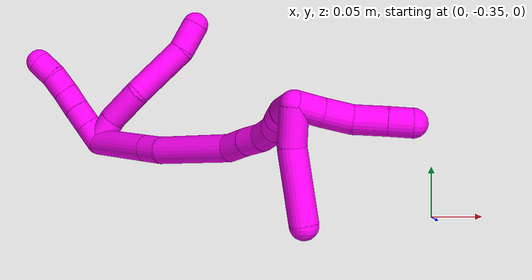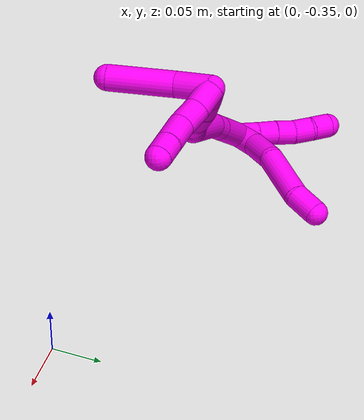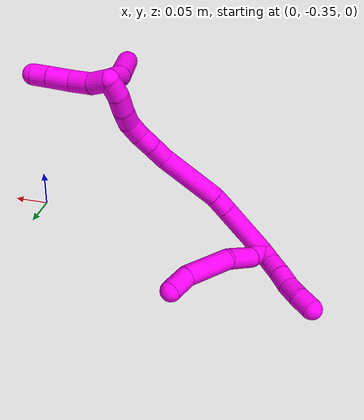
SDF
<sdf version="1.7">
 <world name="default">
  <model name="10">
   <static>0</static>
   <link name="10">
    <collision name="collision-cylinder-e_1_2_8">
     <pose>-0.002279 -0.00567 -0.01126 2.67509 -0.178845 -0.721756</pose>
     <geometry><cylinder><radius>0.0125</radius><length>0.025624</length></cylinder></geometry>
     <surface>
      <friction><ode><mu>1.16</mu><mu2>1.16</mu2><slip1>0</slip1><slip2>0</slip2></ode></friction>
      <contact><ode><kp>1e+06</kp><kd>1</kd><max_vel>0</max_vel><min_depth>0.001</min_depth></ode></contact>
     </surface>
    </collision>
    <visual name="visual-cylinder-e_1_2_8">
     <pose>-0.002279 -0.00567 -0.01126 2.67509 -0.178845 -0.721756</pose>
     <geometry><cylinder><radius>0.0125</radius><length>0.025624</length></cylinder></geometry>
     <material><ambient>1 0 0.964706 1</ambient></material>
    </visual>
    <collision name="collision-cylinder-e_2_8_9">
     <pose>-0.005155 -0.023825 -0.036912 2.42703 -0.031293 -0.083786</pose>
     <geometry><cylinder><radius>0.0125</radius><length>0.038122</length></cylinder></geometry>
     <surface>
      <friction><ode><mu>1.16</mu><mu2>1.16</mu2><slip1>0</slip1><slip2>0</slip2></ode></friction>
      <contact><ode><kp>1e+06</kp><kd>1</kd><max_vel>0</max_vel><min_depth>0.001</min_depth></ode></contact>
     </surface>
    </collision>
    <visual name="visual-cylinder-e_2_8_9">
     <pose>-0.005155 -0.023825 -0.036912 2.42703 -0.031293 -0.083786</pose>
     <geometry><cylinder><radius>0.0125</radius><length>0.038122</length></cylinder></geometry>
     <material><ambient>1 0 0.964706 1</ambient></material>
    </visual>
    <collision name="collision-cylinder-e_3_9_10">
     <pose>-0.016267 -0.054539 -0.071058 2.39631 -0.372903 -0.899226</pose>
     <geometry><cylinder><radius>0.0125</radius><length>0.057729</length></cylinder></geometry>
     <surface>
      <friction><ode><mu>1.16</mu><mu2>1.16</mu2><slip1>0</slip1><slip2>0</slip2></ode></friction>
      <contact><ode><kp>1e+06</kp><kd>1</kd><max_vel>0</max_vel><min_depth>0.001</min_depth></ode></contact>
     </surface>
    </collision>
    <visual name="visual-cylinder-e_3_9_10">
     <pose>-0.016267 -0.054539 -0.071058 2.39631 -0.372903 -0.899226</pose>
     <geometry><cylinder><radius>0.0125</radius><length>0.057729</length></cylinder></geometry>
     <material><ambient>1 0 0.964706 1</ambient></material>
    </visual>
    <collision name="collision-cylinder-e_4_10_6">
     <pose>-0.033238 -0.077739 -0.10252 2.74016 -0.469635 -1.73206</pose>
     <geometry><cylinder><radius>0.0125</radius><length>0.028525</length></cylinder></geometry>
     <surface>
      <friction><ode><mu>1.16</mu><mu2>1.16</mu2><slip1>0</slip1><slip2>0</slip2></ode></friction>
      <contact><ode><kp>1e+06</kp><kd>1</kd><max_vel>0</max_vel><min_depth>0.001</min_depth></ode></contact>
     </surface>
    </collision>
    <visual name="visual-cylinder-e_4_10_6">
     <pose>-0.033238 -0.077739 -0.10252 2.74016 -0.469635 -1.73206</pose>
     <geometry><cylinder><radius>0.0125</radius><length>0.028525</length></cylinder></geometry>
     <material><ambient>1 0 0.964706 1</ambient></material>
    </visual>
    <collision name="collision-cylinder-e_1_2_11">
     <pose>-0.002404 0.00668 -0.007043 -2.38262 -0.242777 0.593674</pose>
     <geometry><cylinder><radius>0.0125</radius><length>0.02</length></cylinder></geometry>
     <surface>
      <friction><ode><mu>1.16</mu><mu2>1.16</mu2><slip1>0</slip1><slip2>0</slip2></ode></friction>
      <contact><ode><kp>1e+06</kp><kd>1</kd><max_vel>0</max_vel><min_depth>0.001</min_depth></ode></contact>
     </surface>
    </collision>
    <visual name="visual-cylinder-e_1_2_11">
     <pose>-0.002404 0.00668 -0.007043 -2.38262 -0.242777 0.593674</pose>
     <geometry><cylinder><radius>0.0125</radius><length>0.02</length></cylinder></geometry>
     <material><ambient>1 0 0.964706 1</ambient></material>
    </visual>
    <collision name="collision-cylinder-e_2_11_12">
     <pose>-0.006839 0.020007 -0.021275 -2.3954 -0.204533 0.512811</pose>
     <geometry><cylinder><radius>0.0125</radius><length>0.02</length></cylinder></geometry>
     <surface>
      <friction><ode><mu>1.16</mu><mu2>1.16</mu2><slip1>0</slip1><slip2>0</slip2></ode></friction>
      <contact><ode><kp>1e+06</kp><kd>1</kd><max_vel>0</max_vel><min_depth>0.001</min_depth></ode></contact>
     </surface>
    </collision>
    <visual name="visual-cylinder-e_2_11_12">
     <pose>-0.006839 0.020007 -0.021275 -2.3954 -0.204533 0.512811</pose>
     <geometry><cylinder><radius>0.0125</radius><length>0.02</length></cylinder></geometry>
     <material><ambient>1 0 0.964706 1</ambient></material>
    </visual>
    <collision name="collision-cylinder-e_3_12_13">
     <pose>-0.011538 0.033189 -0.035548 -2.39645 -0.270058 0.669092</pose>
     <geometry><cylinder><radius>0.0125</radius><length>0.02</length></cylinder></geometry>
     <surface>
      <friction><ode><mu>1.16</mu><mu2>1.16</mu2><slip1>0</slip1><slip2>0</slip2></ode></friction>
      <contact><ode><kp>1e+06</kp><kd>1</kd><max_vel>0</max_vel><min_depth>0.001</min_depth></ode></contact>
     </surface>
    </collision>
    <visual name="visual-cylinder-e_3_12_13">
     <pose>-0.011538 0.033189 -0.035548 -2.39645 -0.270058 0.669092</pose>
     <geometry><cylinder><radius>0.0125</radius><length>0.02</length></cylinder></geometry>
     <material><ambient>1 0 0.964706 1</ambient></material>
    </visual>
    <collision name="collision-cylinder-e_4_13_14">
     <pose>-0.01517 0.046319 -0.050087 -2.41733 -0.09654 0.25366</pose>
     <geometry><cylinder><radius>0.0125</radius><length>0.02</length></cylinder></geometry>
     <surface>
      <friction><ode><mu>1.16</mu><mu2>1.16</mu2><slip1>0</slip1><slip2>0</slip2></ode></friction>
      <contact><ode><kp>1e+06</kp><kd>1</kd><max_vel>0</max_vel><min_depth>0.001</min_depth></ode></contact>
     </surface>
    </collision>
    <visual name="visual-cylinder-e_4_13_14">
     <pose>-0.01517 0.046319 -0.050087 -2.41733 -0.09654 0.25366</pose>
     <geometry><cylinder><radius>0.0125</radius><length>0.02</length></cylinder></geometry>
     <material><ambient>1 0 0.964706 1</ambient></material>
    </visual>
    <collision name="collision-cylinder-e_5_14_5">
     <pose>-0.017799 0.060892 -0.063336 -2.19897 -0.167354 0.326237</pose>
     <geometry><cylinder><radius>0.0125</radius><length>0.02</length></cylinder></geometry>
     <surface>
      <friction><ode><mu>1.16</mu><mu2>1.16</mu2><slip1>0</slip1><slip2>0</slip2></ode></friction>
      <contact><ode><kp>1e+06</kp><kd>1</kd><max_vel>0</max_vel><min_depth>0.001</min_depth></ode></contact>
     </surface>
    </collision>
    <visual name="visual-cylinder-e_5_14_5">
     <pose>-0.017799 0.060892 -0.063336 -2.19897 -0.167354 0.326237</pose>
     <geometry><cylinder><radius>0.0125</radius><length>0.02</length></cylinder></geometry>
     <material><ambient>1 0 0.964706 1</ambient></material>
    </visual>
    <collision name="collision-cylinder-e_1_2_15">
     <pose>0.019081 -0.029253 -0.00488 1.73609 0.571698 0.667975</pose>
     <geometry><cylinder><radius>0.0125</radius><length>0.07053</length></cylinder></geometry>
     <surface>
      <friction><ode><mu>1.16</mu><mu2>1.16</mu2><slip1>0</slip1><slip2>0</slip2></ode></friction>
      <contact><ode><kp>1e+06</kp><kd>1</kd><max_vel>0</max_vel><min_depth>0.001</min_depth></ode></contact>
     </surface>
    </collision>
    <visual name="visual-cylinder-e_1_2_15">
     <pose>0.019081 -0.029253 -0.00488 1.73609 0.571698 0.667975</pose>
     <geometry><cylinder><radius>0.0125</radius><length>0.07053</length></cylinder></geometry>
     <material><ambient>1 0 0.964706 1</ambient></material>
    </visual>
    <collision name="collision-cylinder-e_2_15_16">
     <pose>0.043897 -0.067391 -0.011289 1.74126 0.566658 0.665434</pose>
     <geometry><cylinder><radius>0.0125</radius><length>0.021372</length></cylinder></geometry>
     <surface>
      <friction><ode><mu>1.16</mu><mu2>1.16</mu2><slip1>0</slip1><slip2>0</slip2></ode></friction>
      <contact><ode><kp>1e+06</kp><kd>1</kd><max_vel>0</max_vel><min_depth>0.001</min_depth></ode></contact>
     </surface>
    </collision>
    <visual name="visual-cylinder-e_2_15_16">
     <pose>0.043897 -0.067391 -0.011289 1.74126 0.566658 0.665434</pose>
     <geometry><cylinder><radius>0.0125</radius><length>0.021372</length></cylinder></geometry>
     <material><ambient>1 0 0.964706 1</ambient></material>
    </visual>
    <collision name="collision-cylinder-e_3_16_17">
     <pose>0.06476 -0.111788 -0.021673 1.81515 0.3919 0.497606</pose>
     <geometry><cylinder><radius>0.0125</radius><length>0.079204</length></cylinder></geometry>
     <surface>
      <friction><ode><mu>1.16</mu><mu2>1.16</mu2><slip1>0</slip1><slip2>0</slip2></ode></friction>
      <contact><ode><kp>1e+06</kp><kd>1</kd><max_vel>0</max_vel><min_depth>0.001</min_depth></ode></contact>
     </surface>
    </collision>
    <visual name="visual-cylinder-e_3_16_17">
     <pose>0.06476 -0.111788 -0.021673 1.81515 0.3919 0.497606</pose>
     <geometry><cylinder><radius>0.0125</radius><length>0.079204</length></cylinder></geometry>
     <material><ambient>1 0 0.964706 1</ambient></material>
    </visual>
    <collision name="collision-cylinder-e_4_17_18">
     <pose>0.085861 -0.156018 -0.035908 2.12377 0.528099 0.902477</pose>
     <geometry><cylinder><radius>0.0125</radius><length>0.023719</length></cylinder></geometry>
     <surface>
      <friction><ode><mu>1.16</mu><mu2>1.16</mu2><slip1>0</slip1><slip2>0</slip2></ode></friction>
      <contact><ode><kp>1e+06</kp><kd>1</kd><max_vel>0</max_vel><min_depth>0.001</min_depth></ode></contact>
     </surface>
    </collision>
    <visual name="visual-cylinder-e_4_17_18">
     <pose>0.085861 -0.156018 -0.035908 2.12377 0.528099 0.902477</pose>
     <geometry><cylinder><radius>0.0125</radius><length>0.023719</length></cylinder></geometry>
     <material><ambient>1 0 0.964706 1</ambient></material>
    </visual>
    <collision name="collision-cylinder-e_5_18_19">
     <pose>0.096946 -0.172902 -0.04553 2.04985 0.506784 0.805962</pose>
     <geometry><cylinder><radius>0.0125</radius><length>0.021053</length></cylinder></geometry>
     <surface>
      <friction><ode><mu>1.16</mu><mu2>1.16</mu2><slip1>0</slip1><slip2>0</slip2></ode></friction>
      <contact><ode><kp>1e+06</kp><kd>1</kd><max_vel>0</max_vel><min_depth>0.001</min_depth></ode></contact>
     </surface>
    </collision>
    <visual name="visual-cylinder-e_5_18_19">
     <pose>0.096946 -0.172902 -0.04553 2.04985 0.506784 0.805962</pose>
     <geometry><cylinder><radius>0.0125</radius><length>0.021053</length></cylinder></geometry>
     <material><ambient>1 0 0.964706 1</ambient></material>
    </visual>
    <collision name="collision-cylinder-e_6_19_20">
     <pose>0.1081 -0.187418 -0.05578 2.32861 0.605075 1.25472</pose>
     <geometry><cylinder><radius>0.0125</radius><length>0.021254</length></cylinder></geometry>
     <surface>
      <friction><ode><mu>1.16</mu><mu2>1.16</mu2><slip1>0</slip1><slip2>0</slip2></ode></friction>
      <contact><ode><kp>1e+06</kp><kd>1</kd><max_vel>0</max_vel><min_depth>0.001</min_depth></ode></contact>
     </surface>
    </collision>
    <visual name="visual-cylinder-e_6_19_20">
     <pose>0.1081 -0.187418 -0.05578 2.32861 0.605075 1.25472</pose>
     <geometry><cylinder><radius>0.0125</radius><length>0.021254</length></cylinder></geometry>
     <material><ambient>1 0 0.964706 1</ambient></material>
    </visual>
    <collision name="collision-cylinder-e_7_20_21">
     <pose>0.121279 -0.19687 -0.068335 2.69894 0.777587 2.137</pose>
     <geometry><cylinder><radius>0.0125</radius><length>0.020336</length></cylinder></geometry>
     <surface>
      <friction><ode><mu>1.16</mu><mu2>1.16</mu2><slip1>0</slip1><slip2>0</slip2></ode></friction>
      <contact><ode><kp>1e+06</kp><kd>1</kd><max_vel>0</max_vel><min_depth>0.001</min_depth></ode></contact>
     </surface>
    </collision>
    <visual name="visual-cylinder-e_7_20_21">
     <pose>0.121279 -0.19687 -0.068335 2.69894 0.777587 2.137</pose>
     <geometry><cylinder><radius>0.0125</radius><length>0.020336</length></cylinder></geometry>
     <material><ambient>1 0 0.964706 1</ambient></material>
    </visual>
    <collision name="collision-cylinder-e_8_21_22">
     <pose>0.136419 -0.203279 -0.080433 2.60444 0.891915 2.09688</pose>
     <geometry><cylinder><radius>0.0125</radius><length>0.020576</length></cylinder></geometry>
     <surface>
      <friction><ode><mu>1.16</mu><mu2>1.16</mu2><slip1>0</slip1><slip2>0</slip2></ode></friction>
      <contact><ode><kp>1e+06</kp><kd>1</kd><max_vel>0</max_vel><min_depth>0.001</min_depth></ode></contact>
     </surface>
    </collision>
    <visual name="visual-cylinder-e_8_21_22">
     <pose>0.136419 -0.203279 -0.080433 2.60444 0.891915 2.09688</pose>
     <geometry><cylinder><radius>0.0125</radius><length>0.020576</length></cylinder></geometry>
     <material><ambient>1 0 0.964706 1</ambient></material>
    </visual>
    <collision name="collision-cylinder-e_9_22_1">
     <pose>0.15223 -0.212125 -0.091362 2.34147 0.790666 1.55755</pose>
     <geometry><cylinder><radius>0.0125</radius><length>0.021956</length></cylinder></geometry>
     <surface>
      <friction><ode><mu>1.16</mu><mu2>1.16</mu2><slip1>0</slip1><slip2>0</slip2></ode></friction>
      <contact><ode><kp>1e+06</kp><kd>1</kd><max_vel>0</max_vel><min_depth>0.001</min_depth></ode></contact>
     </surface>
    </collision>
    <visual name="visual-cylinder-e_9_22_1">
     <pose>0.15223 -0.212125 -0.091362 2.34147 0.790666 1.55755</pose>
     <geometry><cylinder><radius>0.0125</radius><length>0.021956</length></cylinder></geometry>
     <material><ambient>1 0 0.964706 1</ambient></material>
    </visual>
    <collision name="collision-cylinder-e_1_1_23">
     <pose>0.154712 -0.22827 -0.093209 1.24924 -0.44424 -0.322797</pose>
     <geometry><cylinder><radius>0.0125</radius><length>0.024761</length></cylinder></geometry>
     <surface>
      <friction><ode><mu>1.16</mu><mu2>1.16</mu2><slip1>0</slip1><slip2>0</slip2></ode></friction>
      <contact><ode><kp>1e+06</kp><kd>1</kd><max_vel>0</max_vel><min_depth>0.001</min_depth></ode></contact>
     </surface>
    </collision>
    <visual name="visual-cylinder-e_1_1_23">
     <pose>0.154712 -0.22827 -0.093209 1.24924 -0.44424 -0.322797</pose>
     <geometry><cylinder><radius>0.0125</radius><length>0.024761</length></cylinder></geometry>
     <material><ambient>1 0 0.964706 1</ambient></material>
    </visual>
    <collision name="collision-cylinder-e_2_23_24">
     <pose>0.14701 -0.251382 -0.08719 1.3746 -0.184654 -0.151706</pose>
     <geometry><cylinder><radius>0.0125</radius><length>0.025942</length></cylinder></geometry>
     <surface>
      <friction><ode><mu>1.16</mu><mu2>1.16</mu2><slip1>0</slip1><slip2>0</slip2></ode></friction>
      <contact><ode><kp>1e+06</kp><kd>1</kd><max_vel>0</max_vel><min_depth>0.001</min_depth></ode></contact>
     </surface>
    </collision>
    <visual name="visual-cylinder-e_2_23_24">
     <pose>0.14701 -0.251382 -0.08719 1.3746 -0.184654 -0.151706</pose>
     <geometry><cylinder><radius>0.0125</radius><length>0.025942</length></cylinder></geometry>
     <material><ambient>1 0 0.964706 1</ambient></material>
    </visual>
    <collision name="collision-cylinder-e_3_24_25">
     <pose>0.142774 -0.278041 -0.0848 1.57751 -0.130325 -0.131201</pose>
     <geometry><cylinder><radius>0.0125</radius><length>0.02855</length></cylinder></geometry>
     <surface>
      <friction><ode><mu>1.16</mu><mu2>1.16</mu2><slip1>0</slip1><slip2>0</slip2></ode></friction>
      <contact><ode><kp>1e+06</kp><kd>1</kd><max_vel>0</max_vel><min_depth>0.001</min_depth></ode></contact>
     </surface>
    </collision>
    <visual name="visual-cylinder-e_3_24_25">
     <pose>0.142774 -0.278041 -0.0848 1.57751 -0.130325 -0.131201</pose>
     <geometry><cylinder><radius>0.0125</radius><length>0.02855</length></cylinder></geometry>
     <material><ambient>1 0 0.964706 1</ambient></material>
    </visual>
    <collision name="collision-cylinder-e_4_25_4">
     <pose>0.13942 -0.302459 -0.084735 1.55525 -0.144934 -0.142706</pose>
     <geometry><cylinder><radius>0.0125</radius><length>0.020748</length></cylinder></geometry>
     <surface>
      <friction><ode><mu>1.16</mu><mu2>1.16</mu2><slip1>0</slip1><slip2>0</slip2></ode></friction>
      <contact><ode><kp>1e+06</kp><kd>1</kd><max_vel>0</max_vel><min_depth>0.001</min_depth></ode></contact>
     </surface>
    </collision>
    <visual name="visual-cylinder-e_4_25_4">
     <pose>0.13942 -0.302459 -0.084735 1.55525 -0.144934 -0.142706</pose>
     <geometry><cylinder><radius>0.0125</radius><length>0.020748</length></cylinder></geometry>
     <material><ambient>1 0 0.964706 1</ambient></material>
    </visual>
    <collision name="collision-cylinder-e_1_1_26">
     <pose>0.161471 -0.217859 -0.079392 0.011209 0.082667 0.000464</pose>
     <geometry><cylinder><radius>0.0125</radius><length>0.03482</length></cylinder></geometry>
     <surface>
      <friction><ode><mu>1.16</mu><mu2>1.16</mu2><slip1>0</slip1><slip2>0</slip2></ode></friction>
      <contact><ode><kp>1e+06</kp><kd>1</kd><max_vel>0</max_vel><min_depth>0.001</min_depth></ode></contact>
     </surface>
    </collision>
    <visual name="visual-cylinder-e_1_1_26">
     <pose>0.161471 -0.217859 -0.079392 0.011209 0.082667 0.000464</pose>
     <geometry><cylinder><radius>0.0125</radius><length>0.03482</length></cylinder></geometry>
     <material><ambient>1 0 0.964706 1</ambient></material>
    </visual>
    <collision name="collision-cylinder-e_2_26_3">
     <pose>0.168823 -0.225588 -0.030892 0.237324 0.182511 0.021819</pose>
     <geometry><cylinder><radius>0.0125</radius><length>0.06518</length></cylinder></geometry>
     <surface>
      <friction><ode><mu>1.16</mu><mu2>1.16</mu2><slip1>0</slip1><slip2>0</slip2></ode></friction>
      <contact><ode><kp>1e+06</kp><kd>1</kd><max_vel>0</max_vel><min_depth>0.001</min_depth></ode></contact>
     </surface>
    </collision>
    <visual name="visual-cylinder-e_2_26_3">
     <pose>0.168823 -0.225588 -0.030892 0.237324 0.182511 0.021819</pose>
     <geometry><cylinder><radius>0.0125</radius><length>0.06518</length></cylinder></geometry>
     <material><ambient>1 0 0.964706 1</ambient></material>
    </visual>
    <collision name="collision-sphere-3">
     <pose>0.174739 -0.233123 0.000258 0 -0 0</pose>
     <geometry><sphere><radius>0.0125</radius></sphere></geometry>
     <surface>
      <friction><ode><mu>1.16</mu><mu2>1.16</mu2><slip1>0</slip1><slip2>0</slip2></ode></friction>
      <contact><ode><kp>1e+06</kp><kd>1</kd><max_vel>0</max_vel><min_depth>0.001</min_depth></ode></contact>
     </surface>
    </collision>
    <visual name="visual-sphere-3">
     <pose>0.174739 -0.233123 0.000258 0 -0 0</pose>
     <geometry><sphere><radius>0.0125</radius></sphere></geometry>
     <material><ambient>1 0 0.964706 1</ambient></material>
    </visual>
    <collision name="collision-sphere-26">
     <pose>0.162908 -0.218054 -0.062043 0 -0 0</pose>
     <geometry><sphere><radius>0.0125</radius></sphere></geometry>
     <surface>
      <friction><ode><mu>1.16</mu><mu2>1.16</mu2><slip1>0</slip1><slip2>0</slip2></ode></friction>
      <contact><ode><kp>1e+06</kp><kd>1</kd><max_vel>0</max_vel><min_depth>0.001</min_depth></ode></contact>
     </surface>
    </collision>
    <visual name="visual-sphere-26">
     <pose>0.162908 -0.218054 -0.062043 0 -0 0</pose>
     <geometry><sphere><radius>0.0125</radius></sphere></geometry>
     <material><ambient>1 0 0.964706 1</ambient></material>
    </visual>
    <collision name="collision-sphere-4">
     <pose>0.137922 -0.312722 -0.084575 0 -0 0</pose>
     <geometry><sphere><radius>0.0125</radius></sphere></geometry>
     <surface>
      <friction><ode><mu>1.16</mu><mu2>1.16</mu2><slip1>0</slip1><slip2>0</slip2></ode></friction>
      <contact><ode><kp>1e+06</kp><kd>1</kd><max_vel>0</max_vel><min_depth>0.001</min_depth></ode></contact>
     </surface>
    </collision>
    <visual name="visual-sphere-4">
     <pose>0.137922 -0.312722 -0.084575 0 -0 0</pose>
     <geometry><sphere><radius>0.0125</radius></sphere></geometry>
     <material><ambient>1 0 0.964706 1</ambient></material>
    </visual>
    <collision name="collision-sphere-25">
     <pose>0.140918 -0.292195 -0.084895 0 -0 0</pose>
     <geometry><sphere><radius>0.0125</radius></sphere></geometry>
     <surface>
      <friction><ode><mu>1.16</mu><mu2>1.16</mu2><slip1>0</slip1><slip2>0</slip2></ode></friction>
      <contact><ode><kp>1e+06</kp><kd>1</kd><max_vel>0</max_vel><min_depth>0.001</min_depth></ode></contact>
     </surface>
    </collision>
    <visual name="visual-sphere-25">
     <pose>0.140918 -0.292195 -0.084895 0 -0 0</pose>
     <geometry><sphere><radius>0.0125</radius></sphere></geometry>
     <material><ambient>1 0 0.964706 1</ambient></material>
    </visual>
    <collision name="collision-sphere-24">
     <pose>0.144629 -0.263888 -0.084705 0 -0 0</pose>
     <geometry><sphere><radius>0.0125</radius></sphere></geometry>
     <surface>
      <friction><ode><mu>1.16</mu><mu2>1.16</mu2><slip1>0</slip1><slip2>0</slip2></ode></friction>
      <contact><ode><kp>1e+06</kp><kd>1</kd><max_vel>0</max_vel><min_depth>0.001</min_depth></ode></contact>
     </surface>
    </collision>
    <visual name="visual-sphere-24">
     <pose>0.144629 -0.263888 -0.084705 0 -0 0</pose>
     <geometry><sphere><radius>0.0125</radius></sphere></geometry>
     <material><ambient>1 0 0.964706 1</ambient></material>
    </visual>
    <collision name="collision-sphere-23">
     <pose>0.149392 -0.238876 -0.089676 0 -0 0</pose>
     <geometry><sphere><radius>0.0125</radius></sphere></geometry>
     <surface>
      <friction><ode><mu>1.16</mu><mu2>1.16</mu2><slip1>0</slip1><slip2>0</slip2></ode></friction>
      <contact><ode><kp>1e+06</kp><kd>1</kd><max_vel>0</max_vel><min_depth>0.001</min_depth></ode></contact>
     </surface>
    </collision>
    <visual name="visual-sphere-23">
     <pose>0.149392 -0.238876 -0.089676 0 -0 0</pose>
     <geometry><sphere><radius>0.0125</radius></sphere></geometry>
     <material><ambient>1 0 0.964706 1</ambient></material>
    </visual>
    <collision name="collision-sphere-1">
     <pose>0.160033 -0.217665 -0.096742 0 -0 0</pose>
     <geometry><sphere><radius>0.0125</radius></sphere></geometry>
     <surface>
      <friction><ode><mu>1.16</mu><mu2>1.16</mu2><slip1>0</slip1><slip2>0</slip2></ode></friction>
      <contact><ode><kp>1e+06</kp><kd>1</kd><max_vel>0</max_vel><min_depth>0.001</min_depth></ode></contact>
     </surface>
    </collision>
    <visual name="visual-sphere-1">
     <pose>0.160033 -0.217665 -0.096742 0 -0 0</pose>
     <geometry><sphere><radius>0.0125</radius></sphere></geometry>
     <material><ambient>1 0 0.964706 1</ambient></material>
    </visual>
    <collision name="collision-sphere-22">
     <pose>0.144426 -0.206585 -0.085983 0 -0 0</pose>
     <geometry><sphere><radius>0.0125</radius></sphere></geometry>
     <surface>
      <friction><ode><mu>1.16</mu><mu2>1.16</mu2><slip1>0</slip1><slip2>0</slip2></ode></friction>
      <contact><ode><kp>1e+06</kp><kd>1</kd><max_vel>0</max_vel><min_depth>0.001</min_depth></ode></contact>
     </surface>
    </collision>
    <visual name="visual-sphere-22">
     <pose>0.144426 -0.206585 -0.085983 0 -0 0</pose>
     <geometry><sphere><radius>0.0125</radius></sphere></geometry>
     <material><ambient>1 0 0.964706 1</ambient></material>
    </visual>
    <collision name="collision-sphere-21">
     <pose>0.128412 -0.199974 -0.074883 0 -0 0</pose>
     <geometry><sphere><radius>0.0125</radius></sphere></geometry>
     <surface>
      <friction><ode><mu>1.16</mu><mu2>1.16</mu2><slip1>0</slip1><slip2>0</slip2></ode></friction>
      <contact><ode><kp>1e+06</kp><kd>1</kd><max_vel>0</max_vel><min_depth>0.001</min_depth></ode></contact>
     </surface>
    </collision>
    <visual name="visual-sphere-21">
     <pose>0.128412 -0.199974 -0.074883 0 -0 0</pose>
     <geometry><sphere><radius>0.0125</radius></sphere></geometry>
     <material><ambient>1 0 0.964706 1</ambient></material>
    </visual>
    <collision name="collision-sphere-11">
     <pose>-0.004808 0.01336 -0.014085 0 -0 0</pose>
     <geometry><sphere><radius>0.0125</radius></sphere></geometry>
     <surface>
      <friction><ode><mu>1.16</mu><mu2>1.16</mu2><slip1>0</slip1><slip2>0</slip2></ode></friction>
      <contact><ode><kp>1e+06</kp><kd>1</kd><max_vel>0</max_vel><min_depth>0.001</min_depth></ode></contact>
     </surface>
    </collision>
    <visual name="visual-sphere-11">
     <pose>-0.004808 0.01336 -0.014085 0 -0 0</pose>
     <geometry><sphere><radius>0.0125</radius></sphere></geometry>
     <material><ambient>1 0 0.964706 1</ambient></material>
    </visual>
    <collision name="collision-sphere-6">
     <pose>-0.039692 -0.082709 -0.114227 0 -0 0</pose>
     <geometry><sphere><radius>0.0125</radius></sphere></geometry>
     <surface>
      <friction><ode><mu>1.16</mu><mu2>1.16</mu2><slip1>0</slip1><slip2>0</slip2></ode></friction>
      <contact><ode><kp>1e+06</kp><kd>1</kd><max_vel>0</max_vel><min_depth>0.001</min_depth></ode></contact>
     </surface>
    </collision>
    <visual name="visual-sphere-6">
     <pose>-0.039692 -0.082709 -0.114227 0 -0 0</pose>
     <geometry><sphere><radius>0.0125</radius></sphere></geometry>
     <material><ambient>1 0 0.964706 1</ambient></material>
    </visual>
    <collision name="collision-sphere-10">
     <pose>-0.026783 -0.072769 -0.090812 0 -0 0</pose>
     <geometry><sphere><radius>0.0125</radius></sphere></geometry>
     <surface>
      <friction><ode><mu>1.16</mu><mu2>1.16</mu2><slip1>0</slip1><slip2>0</slip2></ode></friction>
      <contact><ode><kp>1e+06</kp><kd>1</kd><max_vel>0</max_vel><min_depth>0.001</min_depth></ode></contact>
     </surface>
    </collision>
    <visual name="visual-sphere-10">
     <pose>-0.026783 -0.072769 -0.090812 0 -0 0</pose>
     <geometry><sphere><radius>0.0125</radius></sphere></geometry>
     <material><ambient>1 0 0.964706 1</ambient></material>
    </visual>
    <collision name="collision-sphere-9">
     <pose>-0.005751 -0.036309 -0.051303 0 -0 0</pose>
     <geometry><sphere><radius>0.0125</radius></sphere></geometry>
     <surface>
      <friction><ode><mu>1.16</mu><mu2>1.16</mu2><slip1>0</slip1><slip2>0</slip2></ode></friction>
      <contact><ode><kp>1e+06</kp><kd>1</kd><max_vel>0</max_vel><min_depth>0.001</min_depth></ode></contact>
     </surface>
    </collision>
    <visual name="visual-sphere-9">
     <pose>-0.005751 -0.036309 -0.051303 0 -0 0</pose>
     <geometry><sphere><radius>0.0125</radius></sphere></geometry>
     <material><ambient>1 0 0.964706 1</ambient></material>
    </visual>
    <collision name="collision-sphere-2">
     <geometry><sphere><radius>0.0125</radius></sphere></geometry>
     <surface>
      <friction><ode><mu>1.16</mu><mu2>1.16</mu2><slip1>0</slip1><slip2>0</slip2></ode></friction>
      <contact><ode><kp>1e+06</kp><kd>1</kd><max_vel>0</max_vel><min_depth>0.001</min_depth></ode></contact>
     </surface>
    </collision>
    <visual name="visual-sphere-2">
     <geometry><sphere><radius>0.0125</radius></sphere></geometry>
     <material><ambient>1 0 0.964706 1</ambient></material>
    </visual>
    <collision name="collision-sphere-19">
     <pose>0.102055 -0.181069 -0.049773 0 -0 0</pose>
     <geometry><sphere><radius>0.0125</radius></sphere></geometry>
     <surface>
      <friction><ode><mu>1.16</mu><mu2>1.16</mu2><slip1>0</slip1><slip2>0</slip2></ode></friction>
      <contact><ode><kp>1e+06</kp><kd>1</kd><max_vel>0</max_vel><min_depth>0.001</min_depth></ode></contact>
     </surface>
    </collision>
    <visual name="visual-sphere-19">
     <pose>0.102055 -0.181069 -0.049773 0 -0 0</pose>
     <geometry><sphere><radius>0.0125</radius></sphere></geometry>
     <material><ambient>1 0 0.964706 1</ambient></material>
    </visual>
    <collision name="collision-sphere-8">
     <pose>-0.004558 -0.011341 -0.022521 0 -0 0</pose>
     <geometry><sphere><radius>0.0125</radius></sphere></geometry>
     <surface>
      <friction><ode><mu>1.16</mu><mu2>1.16</mu2><slip1>0</slip1><slip2>0</slip2></ode></friction>
      <contact><ode><kp>1e+06</kp><kd>1</kd><max_vel>0</max_vel><min_depth>0.001</min_depth></ode></contact>
     </surface>
    </collision>
    <visual name="visual-sphere-8">
     <pose>-0.004558 -0.011341 -0.022521 0 -0 0</pose>
     <geometry><sphere><radius>0.0125</radius></sphere></geometry>
     <material><ambient>1 0 0.964706 1</ambient></material>
    </visual>
    <collision name="collision-sphere-12">
     <pose>-0.00887 0.026654 -0.028465 0 -0 0</pose>
     <geometry><sphere><radius>0.0125</radius></sphere></geometry>
     <surface>
      <friction><ode><mu>1.16</mu><mu2>1.16</mu2><slip1>0</slip1><slip2>0</slip2></ode></friction>
      <contact><ode><kp>1e+06</kp><kd>1</kd><max_vel>0</max_vel><min_depth>0.001</min_depth></ode></contact>
     </surface>
    </collision>
    <visual name="visual-sphere-12">
     <pose>-0.00887 0.026654 -0.028465 0 -0 0</pose>
     <geometry><sphere><radius>0.0125</radius></sphere></geometry>
     <material><ambient>1 0 0.964706 1</ambient></material>
    </visual>
    <collision name="collision-sphere-13">
     <pose>-0.014206 0.039724 -0.042632 0 -0 0</pose>
     <geometry><sphere><radius>0.0125</radius></sphere></geometry>
     <surface>
      <friction><ode><mu>1.16</mu><mu2>1.16</mu2><slip1>0</slip1><slip2>0</slip2></ode></friction>
      <contact><ode><kp>1e+06</kp><kd>1</kd><max_vel>0</max_vel><min_depth>0.001</min_depth></ode></contact>
     </surface>
    </collision>
    <visual name="visual-sphere-13">
     <pose>-0.014206 0.039724 -0.042632 0 -0 0</pose>
     <geometry><sphere><radius>0.0125</radius></sphere></geometry>
     <material><ambient>1 0 0.964706 1</ambient></material>
    </visual>
    <collision name="collision-sphere-14">
     <pose>-0.016134 0.052914 -0.057542 0 -0 0</pose>
     <geometry><sphere><radius>0.0125</radius></sphere></geometry>
     <surface>
      <friction><ode><mu>1.16</mu><mu2>1.16</mu2><slip1>0</slip1><slip2>0</slip2></ode></friction>
      <contact><ode><kp>1e+06</kp><kd>1</kd><max_vel>0</max_vel><min_depth>0.001</min_depth></ode></contact>
     </surface>
    </collision>
    <visual name="visual-sphere-14">
     <pose>-0.016134 0.052914 -0.057542 0 -0 0</pose>
     <geometry><sphere><radius>0.0125</radius></sphere></geometry>
     <material><ambient>1 0 0.964706 1</ambient></material>
    </visual>
    <collision name="collision-sphere-5">
     <pose>-0.019465 0.06887 -0.069131 0 -0 0</pose>
     <geometry><sphere><radius>0.0125</radius></sphere></geometry>
     <surface>
      <friction><ode><mu>1.16</mu><mu2>1.16</mu2><slip1>0</slip1><slip2>0</slip2></ode></friction>
      <contact><ode><kp>1e+06</kp><kd>1</kd><max_vel>0</max_vel><min_depth>0.001</min_depth></ode></contact>
     </surface>
    </collision>
    <visual name="visual-sphere-5">
     <pose>-0.019465 0.06887 -0.069131 0 -0 0</pose>
     <geometry><sphere><radius>0.0125</radius></sphere></geometry>
     <material><ambient>1 0 0.964706 1</ambient></material>
    </visual>
    <collision name="collision-sphere-15">
     <pose>0.038161 -0.058506 -0.00976 0 -0 0</pose>
     <geometry><sphere><radius>0.0125</radius></sphere></geometry>
     <surface>
      <friction><ode><mu>1.16</mu><mu2>1.16</mu2><slip1>0</slip1><slip2>0</slip2></ode></friction>
      <contact><ode><kp>1e+06</kp><kd>1</kd><max_vel>0</max_vel><min_depth>0.001</min_depth></ode></contact>
     </surface>
    </collision>
    <visual name="visual-sphere-15">
     <pose>0.038161 -0.058506 -0.00976 0 -0 0</pose>
     <geometry><sphere><radius>0.0125</radius></sphere></geometry>
     <material><ambient>1 0 0.964706 1</ambient></material>
    </visual>
    <collision name="collision-sphere-16">
     <pose>0.049634 -0.076276 -0.012819 0 -0 0</pose>
     <geometry><sphere><radius>0.0125</radius></sphere></geometry>
     <surface>
      <friction><ode><mu>1.16</mu><mu2>1.16</mu2><slip1>0</slip1><slip2>0</slip2></ode></friction>
      <contact><ode><kp>1e+06</kp><kd>1</kd><max_vel>0</max_vel><min_depth>0.001</min_depth></ode></contact>
     </surface>
    </collision>
    <visual name="visual-sphere-16">
     <pose>0.049634 -0.076276 -0.012819 0 -0 0</pose>
     <geometry><sphere><radius>0.0125</radius></sphere></geometry>
     <material><ambient>1 0 0.964706 1</ambient></material>
    </visual>
    <collision name="collision-sphere-17">
     <pose>0.079885 -0.147301 -0.030528 0 -0 0</pose>
     <geometry><sphere><radius>0.0125</radius></sphere></geometry>
     <surface>
      <friction><ode><mu>1.16</mu><mu2>1.16</mu2><slip1>0</slip1><slip2>0</slip2></ode></friction>
      <contact><ode><kp>1e+06</kp><kd>1</kd><max_vel>0</max_vel><min_depth>0.001</min_depth></ode></contact>
     </surface>
    </collision>
    <visual name="visual-sphere-17">
     <pose>0.079885 -0.147301 -0.030528 0 -0 0</pose>
     <geometry><sphere><radius>0.0125</radius></sphere></geometry>
     <material><ambient>1 0 0.964706 1</ambient></material>
    </visual>
    <collision name="collision-sphere-18">
     <pose>0.091837 -0.164735 -0.041288 0 -0 0</pose>
     <geometry><sphere><radius>0.0125</radius></sphere></geometry>
     <surface>
      <friction><ode><mu>1.16</mu><mu2>1.16</mu2><slip1>0</slip1><slip2>0</slip2></ode></friction>
      <contact><ode><kp>1e+06</kp><kd>1</kd><max_vel>0</max_vel><min_depth>0.001</min_depth></ode></contact>
     </surface>
    </collision>
    <visual name="visual-sphere-18">
     <pose>0.091837 -0.164735 -0.041288 0 -0 0</pose>
     <geometry><sphere><radius>0.0125</radius></sphere></geometry>
     <material><ambient>1 0 0.964706 1</ambient></material>
    </visual>
    <collision name="collision-sphere-20">
     <pose>0.114145 -0.193766 -0.061788 0 -0 0</pose>
     <geometry><sphere><radius>0.0125</radius></sphere></geometry>
     <surface>
      <friction><ode><mu>1.16</mu><mu2>1.16</mu2><slip1>0</slip1><slip2>0</slip2></ode></friction>
      <contact><ode><kp>1e+06</kp><kd>1</kd><max_vel>0</max_vel><min_depth>0.001</min_depth></ode></contact>
     </surface>
    </collision>
    <visual name="visual-sphere-20">
     <pose>0.114145 -0.193766 -0.061788 0 -0 0</pose>
     <geometry><sphere><radius>0.0125</radius></sphere></geometry>
     <material><ambient>1 0 0.964706 1</ambient></material>
    </visual>
    <inertial>
     <pose>0.067235 -0.117706 -0.048191 0 -0 0</pose>
     <mass>0.75</mass>
     <inertia><ixx>0.000158</ixx><ixy>0</ixy><ixz>0</ixz><iyy>2.7e-05</iyy><iyz>0</iyz><izz>5.3e-05</izz></inertia>
    </inertial>
   </link>
   <pose>-0.325659 -0.273743 0.023848 -2.51757 -1.24243 -2.26453</pose>
  </model>
 </world>
</sdf>
